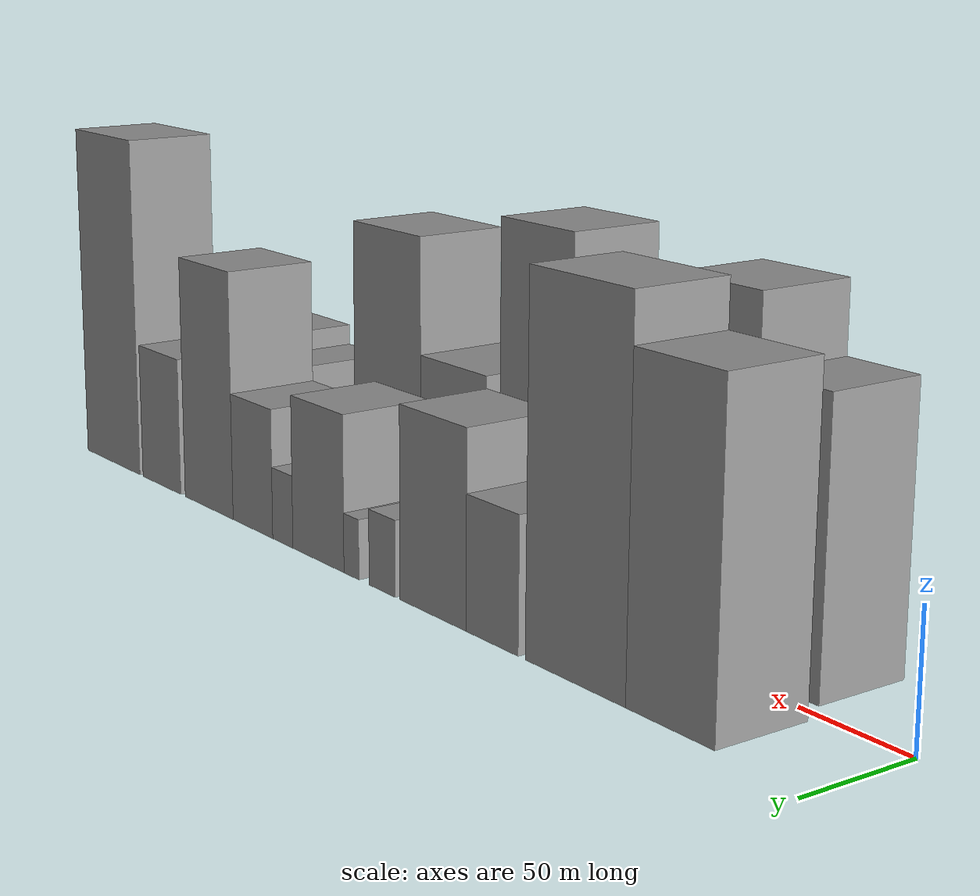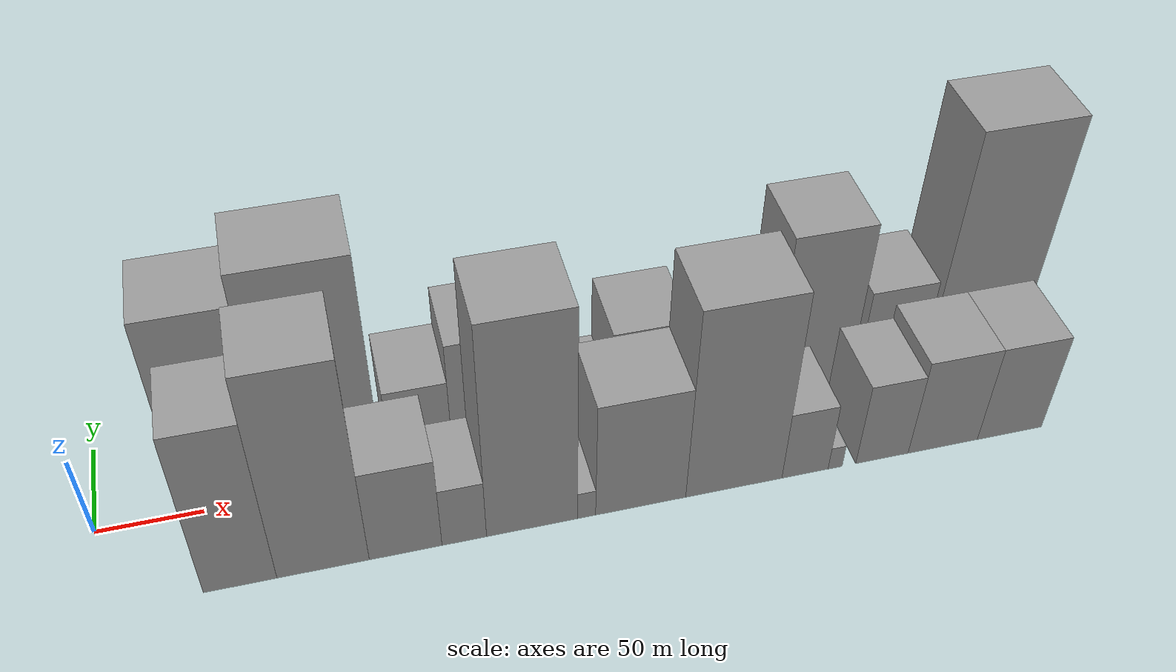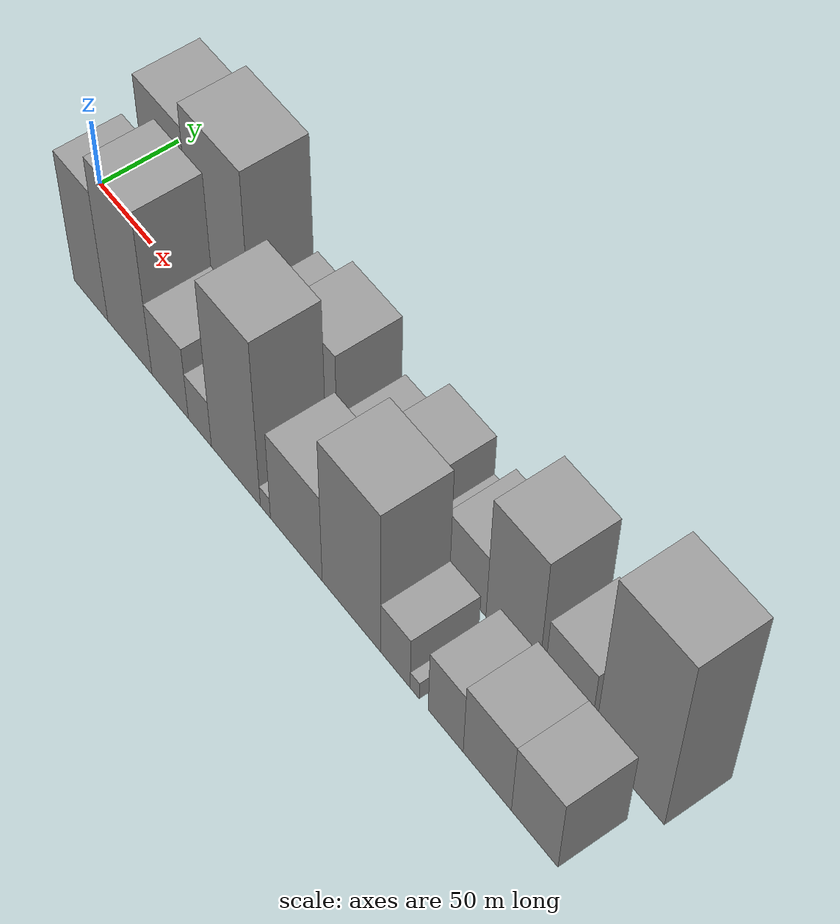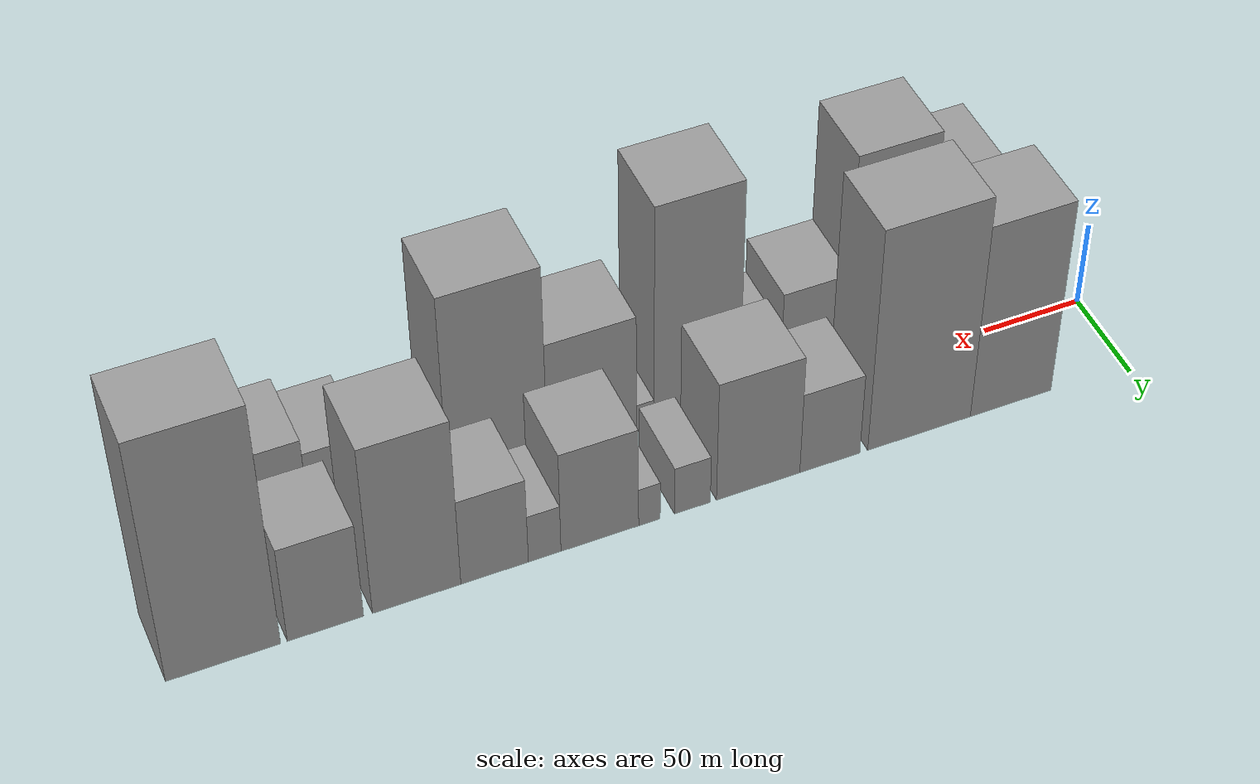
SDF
<sdf version="1.6">
 <world name="default">
  <scene>
   <sky><clouds><speed>12</speed></clouds></sky>
   <ambient>0.4 0.4 0.4 1</ambient>
   <background>0.7 0.7 0.7 1</background>
   <shadows>1</shadows>
  </scene>
  <gravity>0 0 -9.8066</gravity>
  <magnetic_field>6e-06 2.3e-05 -4.2e-05</magnetic_field>
  <physics default="0" name="default_physics" type="ode">
   <ode>
    <solver>
     <type>quick</type>
     <iters>10</iters>
     <sor>1.0</sor>
     <use_dynamic_moi_rescaling>0</use_dynamic_moi_rescaling>
    </solver>
    <constraints>
     <cfm>0</cfm>
     <erp>0.2</erp>
     <contact_max_correcting_vel>100</contact_max_correcting_vel>
     <contact_surface_layer>0.001</contact_surface_layer>
    </constraints>
   </ode>
   <max_step_size>0.004</max_step_size>
   <real_time_factor>1</real_time_factor>
   <real_time_update_rate>250</real_time_update_rate>
  </physics>
  <light name="sun" type="directional">
   <pose>0 0 10 0 0 0</pose>
   <diffuse>0.8 0.8 0.8 1</diffuse>
   <specular>0.2 0.2 0.2 1</specular>
   <attenuation>
    <range>1000</range>
    <constant>0.9</constant>
    <linear>0.01</linear>
    <quadratic>0.001</quadratic>
   </attenuation>
   <direction>-0.5 0.1 -0.9</direction>
  </light>
  <model name="building_1">
   <static>1</static>
   <pose>61.1157 26.0000 0 0.000000 0.000000 1.570796</pose>
   <link name="link">
    <pose>0 0 60.00 0 0 0</pose>
    <collision name="collision"><geometry><box><size>40.0000 42.2314 120.0000</size></box></geometry></collision>
    <visual name="visual">
     <cast_shadows>0</cast_shadows>
     <geometry><box><size>40.0000 42.2314 120.0000</size></box></geometry>
     <material>
      <script>
       <uri>model://grey_wall/materials/scripts</uri>
       <uri>model://grey_wall/materials/textures</uri>
       <name>vrc/grey_wall</name>
      </script>
     </material>
    </visual>
   </link>
  </model>
  <model name="building_2">
   <static>1</static>
   <pose>108.6047 26.0000 0 0.000000 0.000000 1.570796</pose>
   <link name="link">
    <pose>0 0 69.00 0 0 0</pose>
    <collision name="collision"><geometry><box><size>40.0000 52.7466 138.0000</size></box></geometry></collision>
    <visual name="visual">
     <cast_shadows>0</cast_shadows>
     <geometry><box><size>40.0000 52.7466 138.0000</size></box></geometry>
     <material>
      <script>
       <uri>model://grey_wall/materials/scripts</uri>
       <uri>model://grey_wall/materials/textures</uri>
       <name>vrc/grey_wall</name>
      </script>
     </material>
    </visual>
   </link>
  </model>
  <model name="building_3">
   <static>1</static>
   <pose>154.1346 26.0000 0 0.000000 0.000000 1.570796</pose>
   <link name="link">
    <pose>0 0 25.50 0 0 0</pose>
    <collision name="collision"><geometry><box><size>40.0000 30.3133 51.0000</size></box></geometry></collision>
    <visual name="visual">
     <cast_shadows>0</cast_shadows>
     <geometry><box><size>40.0000 30.3133 51.0000</size></box></geometry>
     <material>
      <script>
       <uri>model://grey_wall/materials/scripts</uri>
       <uri>model://grey_wall/materials/textures</uri>
       <name>vrc/grey_wall</name>
      </script>
     </material>
    </visual>
   </link>
  </model>
  <model name="building_4">
   <static>1</static>
   <pose>189.9944 26.0000 0 0.000000 0.000000 1.570796</pose>
   <link name="link">
    <pose>0 0 37.50 0 0 0</pose>
    <collision name="collision"><geometry><box><size>40.0000 41.4063 75.0000</size></box></geometry></collision>
    <visual name="visual">
     <cast_shadows>0</cast_shadows>
     <geometry><box><size>40.0000 41.4063 75.0000</size></box></geometry>
     <material>
      <script>
       <uri>model://grey_wall/materials/scripts</uri>
       <uri>model://grey_wall/materials/textures</uri>
       <name>vrc/grey_wall</name>
      </script>
     </material>
    </visual>
   </link>
  </model>
  <model name="building_5">
   <static>1</static>
   <pose>222.4743 26.0000 0 0.000000 0.000000 1.570796</pose>
   <link name="link">
    <pose>0 0 15.00 0 0 0</pose>
    <collision name="collision"><geometry><box><size>40.0000 17.5535 30.0000</size></box></geometry></collision>
    <visual name="visual">
     <cast_shadows>0</cast_shadows>
     <geometry><box><size>40.0000 17.5535 30.0000</size></box></geometry>
     <material>
      <script>
       <uri>model://grey_wall/materials/scripts</uri>
       <uri>model://grey_wall/materials/textures</uri>
       <name>vrc/grey_wall</name>
      </script>
     </material>
    </visual>
   </link>
  </model>
  <model name="building_6">
   <static>1</static>
   <pose>243.4711 26.0000 0 0.000000 0.000000 1.570796</pose>
   <link name="link">
    <pose>0 0 12.00 0 0 0</pose>
    <collision name="collision"><geometry><box><size>40.0000 10.4401 24.0000</size></box></geometry></collision>
    <visual name="visual">
     <cast_shadows>0</cast_shadows>
     <geometry><box><size>40.0000 10.4401 24.0000</size></box></geometry>
     <material>
      <script>
       <uri>model://grey_wall/materials/scripts</uri>
       <uri>model://grey_wall/materials/textures</uri>
       <name>vrc/grey_wall</name>
      </script>
     </material>
    </visual>
   </link>
  </model>
  <model name="building_7">
   <static>1</static>
   <pose>267.3590 26.0000 0 0.000000 0.000000 1.570796</pose>
   <link name="link">
    <pose>0 0 31.50 0 0 0</pose>
    <collision name="collision"><geometry><box><size>40.0000 37.3355 63.0000</size></box></geometry></collision>
    <visual name="visual">
     <cast_shadows>0</cast_shadows>
     <geometry><box><size>40.0000 37.3355 63.0000</size></box></geometry>
     <material>
      <script>
       <uri>model://grey_wall/materials/scripts</uri>
       <uri>model://grey_wall/materials/textures</uri>
       <name>vrc/grey_wall</name>
      </script>
     </material>
    </visual>
   </link>
  </model>
  <model name="building_8">
   <static>1</static>
   <pose>293.7694 26.0000 0 0.000000 0.000000 1.570796</pose>
   <link name="link">
    <pose>0 0 15.00 0 0 0</pose>
    <collision name="collision"><geometry><box><size>40.0000 15.4853 30.0000</size></box></geometry></collision>
    <visual name="visual">
     <cast_shadows>0</cast_shadows>
     <geometry><box><size>40.0000 15.4853 30.0000</size></box></geometry>
     <material>
      <script>
       <uri>model://grey_wall/materials/scripts</uri>
       <uri>model://grey_wall/materials/textures</uri>
       <name>vrc/grey_wall</name>
      </script>
     </material>
    </visual>
   </link>
  </model>
  <model name="building_9">
   <static>1</static>
   <pose>317.3973 26.0000 0 0.000000 0.000000 1.570796</pose>
   <link name="link">
    <pose>0 0 27.00 0 0 0</pose>
    <collision name="collision"><geometry><box><size>40.0000 31.7705 54.0000</size></box></geometry></collision>
    <visual name="visual">
     <cast_shadows>0</cast_shadows>
     <geometry><box><size>40.0000 31.7705 54.0000</size></box></geometry>
     <material>
      <script>
       <uri>model://grey_wall/materials/scripts</uri>
       <uri>model://grey_wall/materials/textures</uri>
       <name>vrc/grey_wall</name>
      </script>
     </material>
    </visual>
   </link>
  </model>
  <model name="building_10">
   <static>1</static>
   <pose>353.7709 26.0000 0 0.000000 0.000000 1.570796</pose>
   <link name="link">
    <pose>0 0 52.50 0 0 0</pose>
    <collision name="collision"><geometry><box><size>40.0000 40.9767 105.0000</size></box></geometry></collision>
    <visual name="visual">
     <cast_shadows>0</cast_shadows>
     <geometry><box><size>40.0000 40.9767 105.0000</size></box></geometry>
     <material>
      <script>
       <uri>model://grey_wall/materials/scripts</uri>
       <uri>model://grey_wall/materials/textures</uri>
       <name>vrc/grey_wall</name>
      </script>
     </material>
    </visual>
   </link>
  </model>
  <model name="building_11">
   <static>1</static>
   <pose>395.6254 26.0000 0 0.000000 0.000000 1.570796</pose>
   <link name="link">
    <pose>0 0 30.00 0 0 0</pose>
    <collision name="collision"><geometry><box><size>40.0000 34.7324 60.0000</size></box></geometry></collision>
    <visual name="visual">
     <cast_shadows>0</cast_shadows>
     <geometry><box><size>40.0000 34.7324 60.0000</size></box></geometry>
     <material>
      <script>
       <uri>model://grey_wall/materials/scripts</uri>
       <uri>model://grey_wall/materials/textures</uri>
       <name>vrc/grey_wall</name>
      </script>
     </material>
    </visual>
   </link>
  </model>
  <model name="building_12">
   <static>1</static>
   <pose>441.6697 26.0000 0 0.000000 0.000000 1.570796</pose>
   <link name="link">
    <pose>0 0 75.00 0 0 0</pose>
    <collision name="collision"><geometry><box><size>40.0000 51.3561 150.0000</size></box></geometry></collision>
    <visual name="visual">
     <cast_shadows>0</cast_shadows>
     <geometry><box><size>40.0000 51.3561 150.0000</size></box></geometry>
     <material>
      <script>
       <uri>model://grey_wall/materials/scripts</uri>
       <uri>model://grey_wall/materials/textures</uri>
       <name>vrc/grey_wall</name>
      </script>
     </material>
    </visual>
   </link>
  </model>
  <model name="building_13">
   <static>1</static>
   <pose>63.2880 -26.0000 0 0.000000 0.000000 1.570796</pose>
   <link name="link">
    <pose>0 0 52.50 0 0 0</pose>
    <collision name="collision"><geometry><box><size>40.0000 32.5760 105.0000</size></box></geometry></collision>
    <visual name="visual">
     <cast_shadows>0</cast_shadows>
     <geometry><box><size>40.0000 32.5760 105.0000</size></box></geometry>
     <material>
      <script>
       <uri>model://grey_wall/materials/scripts</uri>
       <uri>model://grey_wall/materials/textures</uri>
       <name>vrc/grey_wall</name>
      </script>
     </material>
    </visual>
   </link>
  </model>
  <model name="building_14">
   <static>1</static>
   <pose>100.4013 -26.0000 0 0.000000 0.000000 1.570796</pose>
   <link name="link">
    <pose>0 0 66.00 0 0 0</pose>
    <collision name="collision"><geometry><box><size>40.0000 41.6508 132.0000</size></box></geometry></collision>
    <visual name="visual">
     <cast_shadows>0</cast_shadows>
     <geometry><box><size>40.0000 41.6508 132.0000</size></box></geometry>
     <material>
      <script>
       <uri>model://grey_wall/materials/scripts</uri>
       <uri>model://grey_wall/materials/textures</uri>
       <name>vrc/grey_wall</name>
      </script>
     </material>
    </visual>
   </link>
  </model>
  <model name="building_15">
   <static>1</static>
   <pose>137.9623 -26.0000 0 0.000000 0.000000 1.570796</pose>
   <link name="link">
    <pose>0 0 30.00 0 0 0</pose>
    <collision name="collision"><geometry><box><size>40.0000 33.4712 60.0000</size></box></geometry></collision>
    <visual name="visual">
     <cast_shadows>0</cast_shadows>
     <geometry><box><size>40.0000 33.4712 60.0000</size></box></geometry>
     <material>
      <script>
       <uri>model://grey_wall/materials/scripts</uri>
       <uri>model://grey_wall/materials/textures</uri>
       <name>vrc/grey_wall</name>
      </script>
     </material>
    </visual>
   </link>
  </model>
  <model name="building_16">
   <static>1</static>
   <pose>165.0744 -26.0000 0 0.000000 0.000000 1.570796</pose>
   <link name="link">
    <pose>0 0 19.50 0 0 0</pose>
    <collision name="collision"><geometry><box><size>40.0000 20.7530 39.0000</size></box></geometry></collision>
    <visual name="visual">
     <cast_shadows>0</cast_shadows>
     <geometry><box><size>40.0000 20.7530 39.0000</size></box></geometry>
     <material>
      <script>
       <uri>model://grey_wall/materials/scripts</uri>
       <uri>model://grey_wall/materials/textures</uri>
       <name>vrc/grey_wall</name>
      </script>
     </material>
    </visual>
   </link>
  </model>
  <model name="building_17">
   <static>1</static>
   <pose>197.0286 -26.0000 0 0.000000 0.000000 1.570796</pose>
   <link name="link">
    <pose>0 0 69.00 0 0 0</pose>
    <collision name="collision"><geometry><box><size>40.0000 43.1554 138.0000</size></box></geometry></collision>
    <visual name="visual">
     <cast_shadows>0</cast_shadows>
     <geometry><box><size>40.0000 43.1554 138.0000</size></box></geometry>
     <material>
      <script>
       <uri>model://grey_wall/materials/scripts</uri>
       <uri>model://grey_wall/materials/textures</uri>
       <name>vrc/grey_wall</name>
      </script>
     </material>
    </visual>
   </link>
  </model>
  <model name="building_18">
   <static>1</static>
   <pose>222.9706 -26.0000 0 0.000000 0.000000 1.570796</pose>
   <link name="link">
    <pose>0 0 9.00 0 0 0</pose>
    <collision name="collision"><geometry><box><size>40.0000 8.7285 18.0000</size></box></geometry></collision>
    <visual name="visual">
     <cast_shadows>0</cast_shadows>
     <geometry><box><size>40.0000 8.7285 18.0000</size></box></geometry>
     <material>
      <script>
       <uri>model://grey_wall/materials/scripts</uri>
       <uri>model://grey_wall/materials/textures</uri>
       <name>vrc/grey_wall</name>
      </script>
     </material>
    </visual>
   </link>
  </model>
  <model name="building_19">
   <static>1</static>
   <pose>249.3120 -26.0000 0 0.000000 0.000000 1.570796</pose>
   <link name="link">
    <pose>0 0 37.50 0 0 0</pose>
    <collision name="collision"><geometry><box><size>40.0000 43.9543 75.0000</size></box></geometry></collision>
    <visual name="visual">
     <cast_shadows>0</cast_shadows>
     <geometry><box><size>40.0000 43.9543 75.0000</size></box></geometry>
     <material>
      <script>
       <uri>model://grey_wall/materials/scripts</uri>
       <uri>model://grey_wall/materials/textures</uri>
       <name>vrc/grey_wall</name>
      </script>
     </material>
    </visual>
   </link>
  </model>
  <model name="building_20">
   <static>1</static>
   <pose>295.3145 -26.0000 0 0.000000 0.000000 1.570796</pose>
   <link name="link">
    <pose>0 0 61.50 0 0 0</pose>
    <collision name="collision"><geometry><box><size>40.0000 48.0508 123.0000</size></box></geometry></collision>
    <visual name="visual">
     <cast_shadows>0</cast_shadows>
     <geometry><box><size>40.0000 48.0508 123.0000</size></box></geometry>
     <material>
      <script>
       <uri>model://grey_wall/materials/scripts</uri>
       <uri>model://grey_wall/materials/textures</uri>
       <name>vrc/grey_wall</name>
      </script>
     </material>
    </visual>
   </link>
  </model>
  <model name="building_21">
   <static>1</static>
   <pose>331.0800 -26.0000 0 0.000000 0.000000 1.570796</pose>
   <link name="link">
    <pose>0 0 22.50 0 0 0</pose>
    <collision name="collision"><geometry><box><size>40.0000 23.4801 45.0000</size></box></geometry></collision>
    <visual name="visual">
     <cast_shadows>0</cast_shadows>
     <geometry><box><size>40.0000 23.4801 45.0000</size></box></geometry>
     <material>
      <script>
       <uri>model://grey_wall/materials/scripts</uri>
       <uri>model://grey_wall/materials/textures</uri>
       <name>vrc/grey_wall</name>
      </script>
     </material>
    </visual>
   </link>
  </model>
  <model name="building_22">
   <static>1</static>
   <pose>346.4494 -26.0000 0 0.000000 0.000000 1.570796</pose>
   <link name="link">
    <pose>0 0 7.50 0 0 0</pose>
    <collision name="collision"><geometry><box><size>40.0000 7.2588 15.0000</size></box></geometry></collision>
    <visual name="visual">
     <cast_shadows>0</cast_shadows>
     <geometry><box><size>40.0000 7.2588 15.0000</size></box></geometry>
     <material>
      <script>
       <uri>model://grey_wall/materials/scripts</uri>
       <uri>model://grey_wall/materials/textures</uri>
       <name>vrc/grey_wall</name>
      </script>
     </material>
    </visual>
   </link>
  </model>
  <model name="building_23">
   <static>1</static>
   <pose>370.6458 -26.0000 0 0.000000 0.000000 1.570796</pose>
   <link name="link">
    <pose>0 0 27.00 0 0 0</pose>
    <collision name="collision"><geometry><box><size>40.0000 27.1340 54.0000</size></box></geometry></collision>
    <visual name="visual">
     <cast_shadows>0</cast_shadows>
     <geometry><box><size>40.0000 27.1340 54.0000</size></box></geometry>
     <material>
      <script>
       <uri>model://grey_wall/materials/scripts</uri>
       <uri>model://grey_wall/materials/textures</uri>
       <name>vrc/grey_wall</name>
      </script>
     </material>
    </visual>
   </link>
  </model>
  <model name="building_24">
   <static>1</static>
   <pose>402.4902 -26.0000 0 0.000000 0.000000 1.570796</pose>
   <link name="link">
    <pose>0 0 31.50 0 0 0</pose>
    <collision name="collision"><geometry><box><size>40.0000 36.5549 63.0000</size></box></geometry></collision>
    <visual name="visual">
     <cast_shadows>0</cast_shadows>
     <geometry><box><size>40.0000 36.5549 63.0000</size></box></geometry>
     <material>
      <script>
       <uri>model://grey_wall/materials/scripts</uri>
       <uri>model://grey_wall/materials/textures</uri>
       <name>vrc/grey_wall</name>
      </script>
     </material>
    </visual>
   </link>
  </model>
  <model name="building_25">
   <static>1</static>
   <pose>437.9600 -26.0000 0 0.000000 0.000000 1.570796</pose>
   <link name="link">
    <pose>0 0 31.50 0 0 0</pose>
    <collision name="collision"><geometry><box><size>40.0000 34.3847 63.0000</size></box></geometry></collision>
    <visual name="visual">
     <cast_shadows>0</cast_shadows>
     <geometry><box><size>40.0000 34.3847 63.0000</size></box></geometry>
     <material>
      <script>
       <uri>model://grey_wall/materials/scripts</uri>
       <uri>model://grey_wall/materials/textures</uri>
       <name>vrc/grey_wall</name>
      </script>
     </material>
    </visual>
   </link>
  </model>
 </world>
</sdf>
